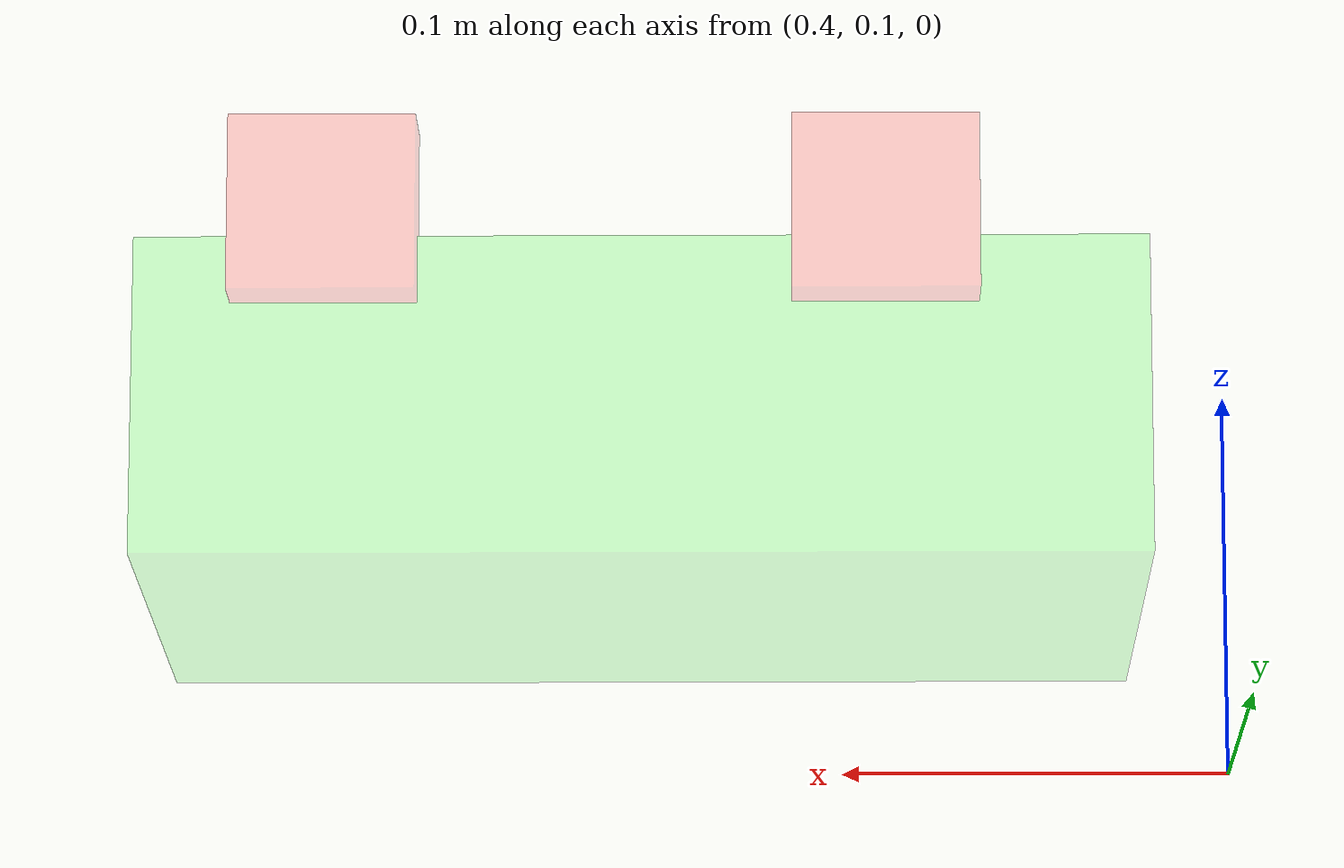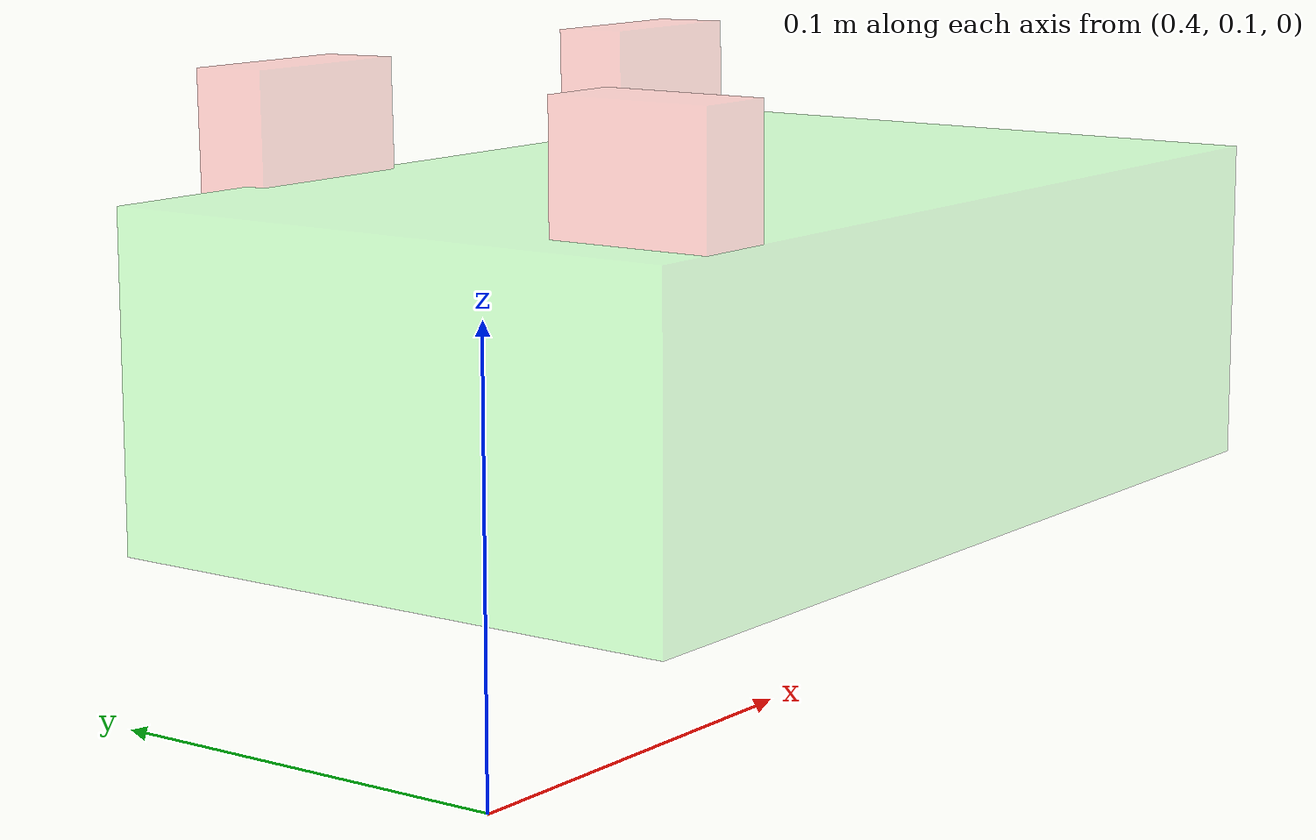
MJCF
<mujoco model="props2">
  <asset>
    <!-- this scene is duplicated across particles and this mesh is too heavy - the diff is 400 particles vs 800 particles -->
  </asset>

  <worldbody>
    <body name="object" pos="0.55 0.15 0.07">
      <freejoint/>

      <geom type="box" size="0.125 0.075 0.04" pos="0 0 0" rgba="0 1 0 0.1" mass="100.0"/>

      <geom type="box" size="0.01 0.02 0.015" pos="-0.10 -0.055 0.055" rgba="1 0 0 0.1" mass="0.1"/>

      <geom type="box"
            size="0.023 0.01 0.022"
            pos="-0.06 0.08 0.045"
            euler="-1.0 0 0"
            rgba="1 0 0 0.1"
            mass="0.1"/>

      <geom type="box"
            size="0.023 0.01 0.022"
            pos="0.078 0.08 0.045"
            euler="-1.0 0 0"
            rgba="1 0 0 0.1"
            mass="0.1"/>
    </body>
  </worldbody>
</mujoco>
